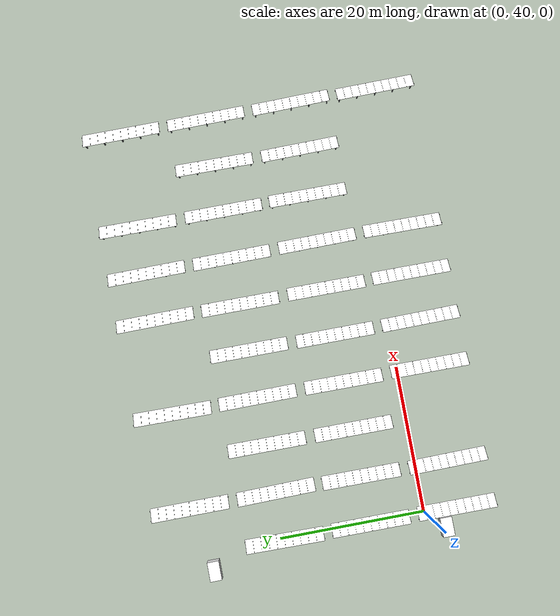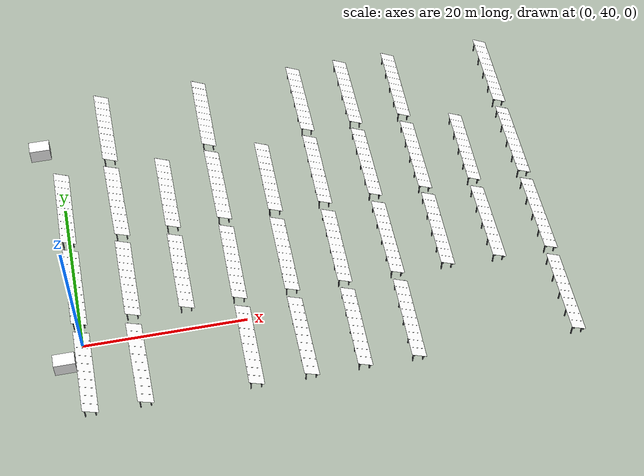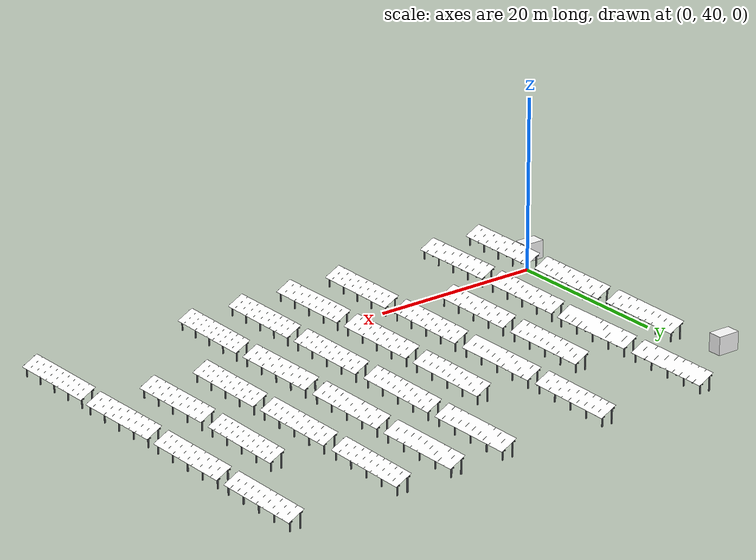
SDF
<sdf version="1.10">
 <world name="solar_farm">
  <model name="table_0003">
   <static>true</static>
   <pose>0.030 35.671 0 0 0 -0.00415</pose>
   <link name="table">
    <collision name="glass_col">
     <pose>0 0 1.6 0 0.488692 0</pose>
     <geometry><box><size>2.100 10.680 0.040</size></box></geometry>
    </collision>
    <visual name="glass">
     <pose>0 0 1.6 0 0.488692 0</pose>
     <geometry><mesh><uri>model://solar_farm_assets/meshes/pv_glass.obj</uri></mesh></geometry>
     <material>
      <ambient>0.25 0.25 0.25 1</ambient>
      <diffuse>1 1 1 1</diffuse>
      <specular>0.4 0.4 0.4 1</specular>
      <pbr>
       <metal>
        <albedo_map>model://solar_farm_assets/materials/textures/pv_atlas_17_albedo.png</albedo_map>
        <roughness_map>model://solar_farm_assets/materials/textures/pv_atlas_17_roughness.png</roughness_map>
        <normal_map>model://solar_farm_assets/materials/textures/pv_normal.png</normal_map>
        <metalness>0.1</metalness>
       </metal>
      </pbr>
     </material>
    </visual>
    <visual name="rack">
     <cast_shadows>false</cast_shadows>
     <geometry><mesh><uri>model://solar_farm_assets/meshes/pv_rack.obj</uri></mesh></geometry>
     <material>
      <ambient>0.18 0.18 0.20 1</ambient>
      <diffuse>0.40 0.41 0.43 1</diffuse>
      <specular>0.5 0.5 0.5 1</specular>
      <pbr><metal><roughness>0.45</roughness><metalness>0.85</metalness></metal></pbr>
     </material>
    </visual>
   </link>
  </model>
  <model name="table_0004">
   <static>true</static>
   <pose>-0.028 47.537 0 0 0 -0.00335</pose>
   <link name="table">
    <collision name="glass_col">
     <pose>0 0 1.6 0 0.488692 0</pose>
     <geometry><box><size>2.100 10.680 0.040</size></box></geometry>
    </collision>
    <visual name="glass">
     <pose>0 0 1.6 0 0.488692 0</pose>
     <geometry><mesh><uri>model://solar_farm_assets/meshes/pv_glass.obj</uri></mesh></geometry>
     <material>
      <ambient>0.25 0.25 0.25 1</ambient>
      <diffuse>1 1 1 1</diffuse>
      <specular>0.4 0.4 0.4 1</specular>
      <pbr>
       <metal>
        <albedo_map>model://solar_farm_assets/materials/textures/pv_atlas_18_albedo.png</albedo_map>
        <roughness_map>model://solar_farm_assets/materials/textures/pv_atlas_18_roughness.png</roughness_map>
        <normal_map>model://solar_farm_assets/materials/textures/pv_normal.png</normal_map>
        <metalness>0.1</metalness>
       </metal>
      </pbr>
     </material>
    </visual>
    <visual name="rack">
     <cast_shadows>false</cast_shadows>
     <geometry><mesh><uri>model://solar_farm_assets/meshes/pv_rack.obj</uri></mesh></geometry>
     <material>
      <ambient>0.18 0.18 0.20 1</ambient>
      <diffuse>0.40 0.41 0.43 1</diffuse>
      <specular>0.5 0.5 0.5 1</specular>
      <pbr><metal><roughness>0.45</roughness><metalness>0.85</metalness></metal></pbr>
     </material>
    </visual>
   </link>
  </model>
  <model name="table_0005">
   <static>true</static>
   <pose>-0.051 59.386 0 0 0 -0.01309</pose>
   <link name="table">
    <collision name="glass_col">
     <pose>0 0 1.6 0 0.488692 0</pose>
     <geometry><box><size>2.100 10.680 0.040</size></box></geometry>
    </collision>
    <visual name="glass">
     <pose>0 0 1.6 0 0.488692 0</pose>
     <geometry><mesh><uri>model://solar_farm_assets/meshes/pv_glass.obj</uri></mesh></geometry>
     <material>
      <ambient>0.25 0.25 0.25 1</ambient>
      <diffuse>1 1 1 1</diffuse>
      <specular>0.4 0.4 0.4 1</specular>
      <pbr>
       <metal>
        <albedo_map>model://solar_farm_assets/materials/textures/pv_atlas_03_albedo.png</albedo_map>
        <roughness_map>model://solar_farm_assets/materials/textures/pv_atlas_03_roughness.png</roughness_map>
        <normal_map>model://solar_farm_assets/materials/textures/pv_normal.png</normal_map>
        <metalness>0.1</metalness>
       </metal>
      </pbr>
     </material>
    </visual>
    <visual name="rack">
     <cast_shadows>false</cast_shadows>
     <geometry><mesh><uri>model://solar_farm_assets/meshes/pv_rack.obj</uri></mesh></geometry>
     <material>
      <ambient>0.18 0.18 0.20 1</ambient>
      <diffuse>0.40 0.41 0.43 1</diffuse>
      <specular>0.5 0.5 0.5 1</specular>
      <pbr><metal><roughness>0.45</roughness><metalness>0.85</metalness></metal></pbr>
     </material>
    </visual>
   </link>
  </model>
  <model name="table_0013">
   <static>true</static>
   <pose>6.402 35.710 0 0 0 0.01118</pose>
   <link name="table">
    <collision name="glass_col">
     <pose>0 0 1.6 0 0.488692 0</pose>
     <geometry><box><size>2.100 10.680 0.040</size></box></geometry>
    </collision>
    <visual name="glass">
     <pose>0 0 1.6 0 0.488692 0</pose>
     <geometry><mesh><uri>model://solar_farm_assets/meshes/pv_glass.obj</uri></mesh></geometry>
     <material>
      <ambient>0.25 0.25 0.25 1</ambient>
      <diffuse>1 1 1 1</diffuse>
      <specular>0.4 0.4 0.4 1</specular>
      <pbr>
       <metal>
        <albedo_map>model://solar_farm_assets/materials/textures/pv_atlas_16_albedo.png</albedo_map>
        <roughness_map>model://solar_farm_assets/materials/textures/pv_atlas_16_roughness.png</roughness_map>
        <normal_map>model://solar_farm_assets/materials/textures/pv_normal.png</normal_map>
        <metalness>0.1</metalness>
       </metal>
      </pbr>
     </material>
    </visual>
    <visual name="rack">
     <cast_shadows>false</cast_shadows>
     <geometry><mesh><uri>model://solar_farm_assets/meshes/pv_rack.obj</uri></mesh></geometry>
     <material>
      <ambient>0.18 0.18 0.20 1</ambient>
      <diffuse>0.40 0.41 0.43 1</diffuse>
      <specular>0.5 0.5 0.5 1</specular>
      <pbr><metal><roughness>0.45</roughness><metalness>0.85</metalness></metal></pbr>
     </material>
    </visual>
   </link>
  </model>
  <model name="table_0014">
   <static>true</static>
   <pose>6.471 47.633 0 0 0 -0.00559</pose>
   <link name="table">
    <collision name="glass_col">
     <pose>0 0 1.6 0 0.488692 0</pose>
     <geometry><box><size>2.100 10.680 0.040</size></box></geometry>
    </collision>
    <visual name="glass">
     <pose>0 0 1.6 0 0.488692 0</pose>
     <geometry><mesh><uri>model://solar_farm_assets/meshes/pv_glass.obj</uri></mesh></geometry>
     <material>
      <ambient>0.25 0.25 0.25 1</ambient>
      <diffuse>1 1 1 1</diffuse>
      <specular>0.4 0.4 0.4 1</specular>
      <pbr>
       <metal>
        <albedo_map>model://solar_farm_assets/materials/textures/pv_atlas_08_albedo.png</albedo_map>
        <roughness_map>model://solar_farm_assets/materials/textures/pv_atlas_08_roughness.png</roughness_map>
        <normal_map>model://solar_farm_assets/materials/textures/pv_normal.png</normal_map>
        <metalness>0.1</metalness>
       </metal>
      </pbr>
     </material>
    </visual>
    <visual name="rack">
     <cast_shadows>false</cast_shadows>
     <geometry><mesh><uri>model://solar_farm_assets/meshes/pv_rack.obj</uri></mesh></geometry>
     <material>
      <ambient>0.18 0.18 0.20 1</ambient>
      <diffuse>0.40 0.41 0.43 1</diffuse>
      <specular>0.5 0.5 0.5 1</specular>
      <pbr><metal><roughness>0.45</roughness><metalness>0.85</metalness></metal></pbr>
     </material>
    </visual>
   </link>
  </model>
  <model name="table_0015">
   <static>true</static>
   <pose>6.536 59.358 0 0 0 0.01509</pose>
   <link name="table">
    <collision name="glass_col">
     <pose>0 0 1.6 0 0.488692 0</pose>
     <geometry><box><size>2.100 10.680 0.040</size></box></geometry>
    </collision>
    <visual name="glass">
     <pose>0 0 1.6 0 0.488692 0</pose>
     <geometry><mesh><uri>model://solar_farm_assets/meshes/pv_glass.obj</uri></mesh></geometry>
     <material>
      <ambient>0.25 0.25 0.25 1</ambient>
      <diffuse>1 1 1 1</diffuse>
      <specular>0.4 0.4 0.4 1</specular>
      <pbr>
       <metal>
        <albedo_map>model://solar_farm_assets/materials/textures/pv_atlas_01_albedo.png</albedo_map>
        <roughness_map>model://solar_farm_assets/materials/textures/pv_atlas_01_roughness.png</roughness_map>
        <normal_map>model://solar_farm_assets/materials/textures/pv_normal.png</normal_map>
        <metalness>0.1</metalness>
       </metal>
      </pbr>
     </material>
    </visual>
    <visual name="rack">
     <cast_shadows>false</cast_shadows>
     <geometry><mesh><uri>model://solar_farm_assets/meshes/pv_rack.obj</uri></mesh></geometry>
     <material>
      <ambient>0.18 0.18 0.20 1</ambient>
      <diffuse>0.40 0.41 0.43 1</diffuse>
      <specular>0.5 0.5 0.5 1</specular>
      <pbr><metal><roughness>0.45</roughness><metalness>0.85</metalness></metal></pbr>
     </material>
    </visual>
   </link>
  </model>
  <model name="table_0016">
   <static>true</static>
   <pose>6.483 71.230 0 0 0 0.00044</pose>
   <link name="table">
    <collision name="glass_col">
     <pose>0 0 1.6 0 0.488692 0</pose>
     <geometry><box><size>2.100 10.680 0.040</size></box></geometry>
    </collision>
    <visual name="glass">
     <pose>0 0 1.6 0 0.488692 0</pose>
     <geometry><mesh><uri>model://solar_farm_assets/meshes/pv_glass.obj</uri></mesh></geometry>
     <material>
      <ambient>0.25 0.25 0.25 1</ambient>
      <diffuse>1 1 1 1</diffuse>
      <specular>0.4 0.4 0.4 1</specular>
      <pbr>
       <metal>
        <albedo_map>model://solar_farm_assets/materials/textures/pv_atlas_13_albedo.png</albedo_map>
        <roughness_map>model://solar_farm_assets/materials/textures/pv_atlas_13_roughness.png</roughness_map>
        <normal_map>model://solar_farm_assets/materials/textures/pv_normal.png</normal_map>
        <metalness>0.1</metalness>
       </metal>
      </pbr>
     </material>
    </visual>
    <visual name="rack">
     <cast_shadows>false</cast_shadows>
     <geometry><mesh><uri>model://solar_farm_assets/meshes/pv_rack.obj</uri></mesh></geometry>
     <material>
      <ambient>0.18 0.18 0.20 1</ambient>
      <diffuse>0.40 0.41 0.43 1</diffuse>
      <specular>0.5 0.5 0.5 1</specular>
      <pbr><metal><roughness>0.45</roughness><metalness>0.85</metalness></metal></pbr>
     </material>
    </visual>
   </link>
  </model>
  <model name="table_0024">
   <static>true</static>
   <pose>12.987 47.448 0 0 0 -0.00189</pose>
   <link name="table">
    <collision name="glass_col">
     <pose>0 0 1.6 0 0.488692 0</pose>
     <geometry><box><size>2.100 10.680 0.040</size></box></geometry>
    </collision>
    <visual name="glass">
     <pose>0 0 1.6 0 0.488692 0</pose>
     <geometry><mesh><uri>model://solar_farm_assets/meshes/pv_glass.obj</uri></mesh></geometry>
     <material>
      <ambient>0.25 0.25 0.25 1</ambient>
      <diffuse>1 1 1 1</diffuse>
      <specular>0.4 0.4 0.4 1</specular>
      <pbr>
       <metal>
        <albedo_map>model://solar_farm_assets/materials/textures/pv_atlas_01_albedo.png</albedo_map>
        <roughness_map>model://solar_farm_assets/materials/textures/pv_atlas_01_roughness.png</roughness_map>
        <normal_map>model://solar_farm_assets/materials/textures/pv_normal.png</normal_map>
        <metalness>0.1</metalness>
       </metal>
      </pbr>
     </material>
    </visual>
    <visual name="rack">
     <cast_shadows>false</cast_shadows>
     <geometry><mesh><uri>model://solar_farm_assets/meshes/pv_rack.obj</uri></mesh></geometry>
     <material>
      <ambient>0.18 0.18 0.20 1</ambient>
      <diffuse>0.40 0.41 0.43 1</diffuse>
      <specular>0.5 0.5 0.5 1</specular>
      <pbr><metal><roughness>0.45</roughness><metalness>0.85</metalness></metal></pbr>
     </material>
    </visual>
   </link>
  </model>
  <model name="table_0025">
   <static>true</static>
   <pose>13.041 59.398 0 0 0 -0.00343</pose>
   <link name="table">
    <collision name="glass_col">
     <pose>0 0 1.6 0 0.488692 0</pose>
     <geometry><box><size>2.100 10.680 0.040</size></box></geometry>
    </collision>
    <visual name="glass">
     <pose>0 0 1.6 0 0.488692 0</pose>
     <geometry><mesh><uri>model://solar_farm_assets/meshes/pv_glass.obj</uri></mesh></geometry>
     <material>
      <ambient>0.25 0.25 0.25 1</ambient>
      <diffuse>1 1 1 1</diffuse>
      <specular>0.4 0.4 0.4 1</specular>
      <pbr>
       <metal>
        <albedo_map>model://solar_farm_assets/materials/textures/pv_atlas_06_albedo.png</albedo_map>
        <roughness_map>model://solar_farm_assets/materials/textures/pv_atlas_06_roughness.png</roughness_map>
        <normal_map>model://solar_farm_assets/materials/textures/pv_normal.png</normal_map>
        <metalness>0.1</metalness>
       </metal>
      </pbr>
     </material>
    </visual>
    <visual name="rack">
     <cast_shadows>false</cast_shadows>
     <geometry><mesh><uri>model://solar_farm_assets/meshes/pv_rack.obj</uri></mesh></geometry>
     <material>
      <ambient>0.18 0.18 0.20 1</ambient>
      <diffuse>0.40 0.41 0.43 1</diffuse>
      <specular>0.5 0.5 0.5 1</specular>
      <pbr><metal><roughness>0.45</roughness><metalness>0.85</metalness></metal></pbr>
     </material>
    </visual>
   </link>
  </model>
  <model name="table_0033">
   <static>true</static>
   <pose>19.518 35.666 0 0 0 -0.00690</pose>
   <link name="table">
    <collision name="glass_col">
     <pose>0 0 1.6 0 0.488692 0</pose>
     <geometry><box><size>2.100 10.680 0.040</size></box></geometry>
    </collision>
    <visual name="glass">
     <pose>0 0 1.6 0 0.488692 0</pose>
     <geometry><mesh><uri>model://solar_farm_assets/meshes/pv_glass.obj</uri></mesh></geometry>
     <material>
      <ambient>0.25 0.25 0.25 1</ambient>
      <diffuse>1 1 1 1</diffuse>
      <specular>0.4 0.4 0.4 1</specular>
      <pbr>
       <metal>
        <albedo_map>model://solar_farm_assets/materials/textures/pv_atlas_11_albedo.png</albedo_map>
        <roughness_map>model://solar_farm_assets/materials/textures/pv_atlas_11_roughness.png</roughness_map>
        <normal_map>model://solar_farm_assets/materials/textures/pv_normal.png</normal_map>
        <metalness>0.1</metalness>
       </metal>
      </pbr>
     </material>
    </visual>
    <visual name="rack">
     <cast_shadows>false</cast_shadows>
     <geometry><mesh><uri>model://solar_farm_assets/meshes/pv_rack.obj</uri></mesh></geometry>
     <material>
      <ambient>0.18 0.18 0.20 1</ambient>
      <diffuse>0.40 0.41 0.43 1</diffuse>
      <specular>0.5 0.5 0.5 1</specular>
      <pbr><metal><roughness>0.45</roughness><metalness>0.85</metalness></metal></pbr>
     </material>
    </visual>
   </link>
  </model>
  <model name="table_0034">
   <static>true</static>
   <pose>19.499 47.564 0 0 0 -0.00833</pose>
   <link name="table">
    <collision name="glass_col">
     <pose>0 0 1.6 0 0.488692 0</pose>
     <geometry><box><size>2.100 10.680 0.040</size></box></geometry>
    </collision>
    <visual name="glass">
     <pose>0 0 1.6 0 0.488692 0</pose>
     <geometry><mesh><uri>model://solar_farm_assets/meshes/pv_glass.obj</uri></mesh></geometry>
     <material>
      <ambient>0.25 0.25 0.25 1</ambient>
      <diffuse>1 1 1 1</diffuse>
      <specular>0.4 0.4 0.4 1</specular>
      <pbr>
       <metal>
        <albedo_map>model://solar_farm_assets/materials/textures/pv_atlas_17_albedo.png</albedo_map>
        <roughness_map>model://solar_farm_assets/materials/textures/pv_atlas_17_roughness.png</roughness_map>
        <normal_map>model://solar_farm_assets/materials/textures/pv_normal.png</normal_map>
        <metalness>0.1</metalness>
       </metal>
      </pbr>
     </material>
    </visual>
    <visual name="rack">
     <cast_shadows>false</cast_shadows>
     <geometry><mesh><uri>model://solar_farm_assets/meshes/pv_rack.obj</uri></mesh></geometry>
     <material>
      <ambient>0.18 0.18 0.20 1</ambient>
      <diffuse>0.40 0.41 0.43 1</diffuse>
      <specular>0.5 0.5 0.5 1</specular>
      <pbr><metal><roughness>0.45</roughness><metalness>0.85</metalness></metal></pbr>
     </material>
    </visual>
   </link>
  </model>
  <model name="table_0035">
   <static>true</static>
   <pose>19.528 59.456 0 0 0 0.00316</pose>
   <link name="table">
    <collision name="glass_col">
     <pose>0 0 1.6 0 0.488692 0</pose>
     <geometry><box><size>2.100 10.680 0.040</size></box></geometry>
    </collision>
    <visual name="glass">
     <pose>0 0 1.6 0 0.488692 0</pose>
     <geometry><mesh><uri>model://solar_farm_assets/meshes/pv_glass.obj</uri></mesh></geometry>
     <material>
      <ambient>0.25 0.25 0.25 1</ambient>
      <diffuse>1 1 1 1</diffuse>
      <specular>0.4 0.4 0.4 1</specular>
      <pbr>
       <metal>
        <albedo_map>model://solar_farm_assets/materials/textures/pv_atlas_14_albedo.png</albedo_map>
        <roughness_map>model://solar_farm_assets/materials/textures/pv_atlas_14_roughness.png</roughness_map>
        <normal_map>model://solar_farm_assets/materials/textures/pv_normal.png</normal_map>
        <metalness>0.1</metalness>
       </metal>
      </pbr>
     </material>
    </visual>
    <visual name="rack">
     <cast_shadows>false</cast_shadows>
     <geometry><mesh><uri>model://solar_farm_assets/meshes/pv_rack.obj</uri></mesh></geometry>
     <material>
      <ambient>0.18 0.18 0.20 1</ambient>
      <diffuse>0.40 0.41 0.43 1</diffuse>
      <specular>0.5 0.5 0.5 1</specular>
      <pbr><metal><roughness>0.45</roughness><metalness>0.85</metalness></metal></pbr>
     </material>
    </visual>
   </link>
  </model>
  <model name="table_0036">
   <static>true</static>
   <pose>19.501 71.237 0 0 0 -0.01435</pose>
   <link name="table">
    <collision name="glass_col">
     <pose>0 0 1.6 0 0.488692 0</pose>
     <geometry><box><size>2.100 10.680 0.040</size></box></geometry>
    </collision>
    <visual name="glass">
     <pose>0 0 1.6 0 0.488692 0</pose>
     <geometry><mesh><uri>model://solar_farm_assets/meshes/pv_glass.obj</uri></mesh></geometry>
     <material>
      <ambient>0.25 0.25 0.25 1</ambient>
      <diffuse>1 1 1 1</diffuse>
      <specular>0.4 0.4 0.4 1</specular>
      <pbr>
       <metal>
        <albedo_map>model://solar_farm_assets/materials/textures/pv_atlas_12_albedo.png</albedo_map>
        <roughness_map>model://solar_farm_assets/materials/textures/pv_atlas_12_roughness.png</roughness_map>
        <normal_map>model://solar_farm_assets/materials/textures/pv_normal.png</normal_map>
        <metalness>0.1</metalness>
       </metal>
      </pbr>
     </material>
    </visual>
    <visual name="rack">
     <cast_shadows>false</cast_shadows>
     <geometry><mesh><uri>model://solar_farm_assets/meshes/pv_rack.obj</uri></mesh></geometry>
     <material>
      <ambient>0.18 0.18 0.20 1</ambient>
      <diffuse>0.40 0.41 0.43 1</diffuse>
      <specular>0.5 0.5 0.5 1</specular>
      <pbr><metal><roughness>0.45</roughness><metalness>0.85</metalness></metal></pbr>
     </material>
    </visual>
   </link>
  </model>
  <model name="table_0043">
   <static>true</static>
   <pose>26.001 35.669 0 0 0 0.00779</pose>
   <link name="table">
    <collision name="glass_col">
     <pose>0 0 1.6 0 0.488692 0</pose>
     <geometry><box><size>2.100 10.680 0.040</size></box></geometry>
    </collision>
    <visual name="glass">
     <pose>0 0 1.6 0 0.488692 0</pose>
     <geometry><mesh><uri>model://solar_farm_assets/meshes/pv_glass.obj</uri></mesh></geometry>
     <material>
      <ambient>0.25 0.25 0.25 1</ambient>
      <diffuse>1 1 1 1</diffuse>
      <specular>0.4 0.4 0.4 1</specular>
      <pbr>
       <metal>
        <albedo_map>model://solar_farm_assets/materials/textures/pv_atlas_10_albedo.png</albedo_map>
        <roughness_map>model://solar_farm_assets/materials/textures/pv_atlas_10_roughness.png</roughness_map>
        <normal_map>model://solar_farm_assets/materials/textures/pv_normal.png</normal_map>
        <metalness>0.1</metalness>
       </metal>
      </pbr>
     </material>
    </visual>
    <visual name="rack">
     <cast_shadows>false</cast_shadows>
     <geometry><mesh><uri>model://solar_farm_assets/meshes/pv_rack.obj</uri></mesh></geometry>
     <material>
      <ambient>0.18 0.18 0.20 1</ambient>
      <diffuse>0.40 0.41 0.43 1</diffuse>
      <specular>0.5 0.5 0.5 1</specular>
      <pbr><metal><roughness>0.45</roughness><metalness>0.85</metalness></metal></pbr>
     </material>
    </visual>
   </link>
  </model>
  <model name="table_0044">
   <static>true</static>
   <pose>25.968 47.508 0 0 0 -0.00264</pose>
   <link name="table">
    <collision name="glass_col">
     <pose>0 0 1.6 0 0.488692 0</pose>
     <geometry><box><size>2.100 10.680 0.040</size></box></geometry>
    </collision>
    <visual name="glass">
     <pose>0 0 1.6 0 0.488692 0</pose>
     <geometry><mesh><uri>model://solar_farm_assets/meshes/pv_glass.obj</uri></mesh></geometry>
     <material>
      <ambient>0.25 0.25 0.25 1</ambient>
      <diffuse>1 1 1 1</diffuse>
      <specular>0.4 0.4 0.4 1</specular>
      <pbr>
       <metal>
        <albedo_map>model://solar_farm_assets/materials/textures/pv_atlas_12_albedo.png</albedo_map>
        <roughness_map>model://solar_farm_assets/materials/textures/pv_atlas_12_roughness.png</roughness_map>
        <normal_map>model://solar_farm_assets/materials/textures/pv_normal.png</normal_map>
        <metalness>0.1</metalness>
       </metal>
      </pbr>
     </material>
    </visual>
    <visual name="rack">
     <cast_shadows>false</cast_shadows>
     <geometry><mesh><uri>model://solar_farm_assets/meshes/pv_rack.obj</uri></mesh></geometry>
     <material>
      <ambient>0.18 0.18 0.20 1</ambient>
      <diffuse>0.40 0.41 0.43 1</diffuse>
      <specular>0.5 0.5 0.5 1</specular>
      <pbr><metal><roughness>0.45</roughness><metalness>0.85</metalness></metal></pbr>
     </material>
    </visual>
   </link>
  </model>
  <model name="table_0045">
   <static>true</static>
   <pose>26.076 59.431 0 0 0 -0.00497</pose>
   <link name="table">
    <collision name="glass_col">
     <pose>0 0 1.6 0 0.488692 0</pose>
     <geometry><box><size>2.100 10.680 0.040</size></box></geometry>
    </collision>
    <visual name="glass">
     <pose>0 0 1.6 0 0.488692 0</pose>
     <geometry><mesh><uri>model://solar_farm_assets/meshes/pv_glass.obj</uri></mesh></geometry>
     <material>
      <ambient>0.25 0.25 0.25 1</ambient>
      <diffuse>1 1 1 1</diffuse>
      <specular>0.4 0.4 0.4 1</specular>
      <pbr>
       <metal>
        <albedo_map>model://solar_farm_assets/materials/textures/pv_atlas_00_albedo.png</albedo_map>
        <roughness_map>model://solar_farm_assets/materials/textures/pv_atlas_00_roughness.png</roughness_map>
        <normal_map>model://solar_farm_assets/materials/textures/pv_normal.png</normal_map>
        <metalness>0.1</metalness>
       </metal>
      </pbr>
     </material>
    </visual>
    <visual name="rack">
     <cast_shadows>false</cast_shadows>
     <geometry><mesh><uri>model://solar_farm_assets/meshes/pv_rack.obj</uri></mesh></geometry>
     <material>
      <ambient>0.18 0.18 0.20 1</ambient>
      <diffuse>0.40 0.41 0.43 1</diffuse>
      <specular>0.5 0.5 0.5 1</specular>
      <pbr><metal><roughness>0.45</roughness><metalness>0.85</metalness></metal></pbr>
     </material>
    </visual>
   </link>
  </model>
  <model name="table_0053">
   <static>true</static>
   <pose>32.491 35.713 0 0 0 -0.00608</pose>
   <link name="table">
    <collision name="glass_col">
     <pose>0 0 1.6 0 0.488692 0</pose>
     <geometry><box><size>2.100 10.680 0.040</size></box></geometry>
    </collision>
    <visual name="glass">
     <pose>0 0 1.6 0 0.488692 0</pose>
     <geometry><mesh><uri>model://solar_farm_assets/meshes/pv_glass.obj</uri></mesh></geometry>
     <material>
      <ambient>0.25 0.25 0.25 1</ambient>
      <diffuse>1 1 1 1</diffuse>
      <specular>0.4 0.4 0.4 1</specular>
      <pbr>
       <metal>
        <albedo_map>model://solar_farm_assets/materials/textures/pv_atlas_13_albedo.png</albedo_map>
        <roughness_map>model://solar_farm_assets/materials/textures/pv_atlas_13_roughness.png</roughness_map>
        <normal_map>model://solar_farm_assets/materials/textures/pv_normal.png</normal_map>
        <metalness>0.1</metalness>
       </metal>
      </pbr>
     </material>
    </visual>
    <visual name="rack">
     <cast_shadows>false</cast_shadows>
     <geometry><mesh><uri>model://solar_farm_assets/meshes/pv_rack.obj</uri></mesh></geometry>
     <material>
      <ambient>0.18 0.18 0.20 1</ambient>
      <diffuse>0.40 0.41 0.43 1</diffuse>
      <specular>0.5 0.5 0.5 1</specular>
      <pbr><metal><roughness>0.45</roughness><metalness>0.85</metalness></metal></pbr>
     </material>
    </visual>
   </link>
  </model>
  <model name="table_0054">
   <static>true</static>
   <pose>32.503 47.481 0 0 0 -0.00562</pose>
   <link name="table">
    <collision name="glass_col">
     <pose>0 0 1.6 0 0.488692 0</pose>
     <geometry><box><size>2.100 10.680 0.040</size></box></geometry>
    </collision>
    <visual name="glass">
     <pose>0 0 1.6 0 0.488692 0</pose>
     <geometry><mesh><uri>model://solar_farm_assets/meshes/pv_glass.obj</uri></mesh></geometry>
     <material>
      <ambient>0.25 0.25 0.25 1</ambient>
      <diffuse>1 1 1 1</diffuse>
      <specular>0.4 0.4 0.4 1</specular>
      <pbr>
       <metal>
        <albedo_map>model://solar_farm_assets/materials/textures/pv_atlas_18_albedo.png</albedo_map>
        <roughness_map>model://solar_farm_assets/materials/textures/pv_atlas_18_roughness.png</roughness_map>
        <normal_map>model://solar_farm_assets/materials/textures/pv_normal.png</normal_map>
        <metalness>0.1</metalness>
       </metal>
      </pbr>
     </material>
    </visual>
    <visual name="rack">
     <cast_shadows>false</cast_shadows>
     <geometry><mesh><uri>model://solar_farm_assets/meshes/pv_rack.obj</uri></mesh></geometry>
     <material>
      <ambient>0.18 0.18 0.20 1</ambient>
      <diffuse>0.40 0.41 0.43 1</diffuse>
      <specular>0.5 0.5 0.5 1</specular>
      <pbr><metal><roughness>0.45</roughness><metalness>0.85</metalness></metal></pbr>
     </material>
    </visual>
   </link>
  </model>
  <model name="table_0055">
   <static>true</static>
   <pose>32.470 59.441 0 0 0 -0.00553</pose>
   <link name="table">
    <collision name="glass_col">
     <pose>0 0 1.6 0 0.488692 0</pose>
     <geometry><box><size>2.100 10.680 0.040</size></box></geometry>
    </collision>
    <visual name="glass">
     <pose>0 0 1.6 0 0.488692 0</pose>
     <geometry><mesh><uri>model://solar_farm_assets/meshes/pv_glass.obj</uri></mesh></geometry>
     <material>
      <ambient>0.25 0.25 0.25 1</ambient>
      <diffuse>1 1 1 1</diffuse>
      <specular>0.4 0.4 0.4 1</specular>
      <pbr>
       <metal>
        <albedo_map>model://solar_farm_assets/materials/textures/pv_atlas_03_albedo.png</albedo_map>
        <roughness_map>model://solar_farm_assets/materials/textures/pv_atlas_03_roughness.png</roughness_map>
        <normal_map>model://solar_farm_assets/materials/textures/pv_normal.png</normal_map>
        <metalness>0.1</metalness>
       </metal>
      </pbr>
     </material>
    </visual>
    <visual name="rack">
     <cast_shadows>false</cast_shadows>
     <geometry><mesh><uri>model://solar_farm_assets/meshes/pv_rack.obj</uri></mesh></geometry>
     <material>
      <ambient>0.18 0.18 0.20 1</ambient>
      <diffuse>0.40 0.41 0.43 1</diffuse>
      <specular>0.5 0.5 0.5 1</specular>
      <pbr><metal><roughness>0.45</roughness><metalness>0.85</metalness></metal></pbr>
     </material>
    </visual>
   </link>
  </model>
  <model name="table_0056">
   <static>true</static>
   <pose>32.491 71.270 0 0 0 0.00438</pose>
   <link name="table">
    <collision name="glass_col">
     <pose>0 0 1.6 0 0.488692 0</pose>
     <geometry><box><size>2.100 10.680 0.040</size></box></geometry>
    </collision>
    <visual name="glass">
     <pose>0 0 1.6 0 0.488692 0</pose>
     <geometry><mesh><uri>model://solar_farm_assets/meshes/pv_glass.obj</uri></mesh></geometry>
     <material>
      <ambient>0.25 0.25 0.25 1</ambient>
      <diffuse>1 1 1 1</diffuse>
      <specular>0.4 0.4 0.4 1</specular>
      <pbr>
       <metal>
        <albedo_map>model://solar_farm_assets/materials/textures/pv_atlas_17_albedo.png</albedo_map>
        <roughness_map>model://solar_farm_assets/materials/textures/pv_atlas_17_roughness.png</roughness_map>
        <normal_map>model://solar_farm_assets/materials/textures/pv_normal.png</normal_map>
        <metalness>0.1</metalness>
       </metal>
      </pbr>
     </material>
    </visual>
    <visual name="rack">
     <cast_shadows>false</cast_shadows>
     <geometry><mesh><uri>model://solar_farm_assets/meshes/pv_rack.obj</uri></mesh></geometry>
     <material>
      <ambient>0.18 0.18 0.20 1</ambient>
      <diffuse>0.40 0.41 0.43 1</diffuse>
      <specular>0.5 0.5 0.5 1</specular>
      <pbr><metal><roughness>0.45</roughness><metalness>0.85</metalness></metal></pbr>
     </material>
    </visual>
   </link>
  </model>
  <model name="table_0063">
   <static>true</static>
   <pose>39.023 35.666 0 0 0 -0.01412</pose>
   <link name="table">
    <collision name="glass_col">
     <pose>0 0 1.6 0 0.488692 0</pose>
     <geometry><box><size>2.100 10.680 0.040</size></box></geometry>
    </collision>
    <visual name="glass">
     <pose>0 0 1.6 0 0.488692 0</pose>
     <geometry><mesh><uri>model://solar_farm_assets/meshes/pv_glass.obj</uri></mesh></geometry>
     <material>
      <ambient>0.25 0.25 0.25 1</ambient>
      <diffuse>1 1 1 1</diffuse>
      <specular>0.4 0.4 0.4 1</specular>
      <pbr>
       <metal>
        <albedo_map>model://solar_farm_assets/materials/textures/pv_atlas_15_albedo.png</albedo_map>
        <roughness_map>model://solar_farm_assets/materials/textures/pv_atlas_15_roughness.png</roughness_map>
        <normal_map>model://solar_farm_assets/materials/textures/pv_normal.png</normal_map>
        <metalness>0.1</metalness>
       </metal>
      </pbr>
     </material>
    </visual>
    <visual name="rack">
     <cast_shadows>false</cast_shadows>
     <geometry><mesh><uri>model://solar_farm_assets/meshes/pv_rack.obj</uri></mesh></geometry>
     <material>
      <ambient>0.18 0.18 0.20 1</ambient>
      <diffuse>0.40 0.41 0.43 1</diffuse>
      <specular>0.5 0.5 0.5 1</specular>
      <pbr><metal><roughness>0.45</roughness><metalness>0.85</metalness></metal></pbr>
     </material>
    </visual>
   </link>
  </model>
  <model name="table_0064">
   <static>true</static>
   <pose>39.047 47.522 0 0 0 0.00572</pose>
   <link name="table">
    <collision name="glass_col">
     <pose>0 0 1.6 0 0.488692 0</pose>
     <geometry><box><size>2.100 10.680 0.040</size></box></geometry>
    </collision>
    <visual name="glass">
     <pose>0 0 1.6 0 0.488692 0</pose>
     <geometry><mesh><uri>model://solar_farm_assets/meshes/pv_glass.obj</uri></mesh></geometry>
     <material>
      <ambient>0.25 0.25 0.25 1</ambient>
      <diffuse>1 1 1 1</diffuse>
      <specular>0.4 0.4 0.4 1</specular>
      <pbr>
       <metal>
        <albedo_map>model://solar_farm_assets/materials/textures/pv_atlas_17_albedo.png</albedo_map>
        <roughness_map>model://solar_farm_assets/materials/textures/pv_atlas_17_roughness.png</roughness_map>
        <normal_map>model://solar_farm_assets/materials/textures/pv_normal.png</normal_map>
        <metalness>0.1</metalness>
       </metal>
      </pbr>
     </material>
    </visual>
    <visual name="rack">
     <cast_shadows>false</cast_shadows>
     <geometry><mesh><uri>model://solar_farm_assets/meshes/pv_rack.obj</uri></mesh></geometry>
     <material>
      <ambient>0.18 0.18 0.20 1</ambient>
      <diffuse>0.40 0.41 0.43 1</diffuse>
      <specular>0.5 0.5 0.5 1</specular>
      <pbr><metal><roughness>0.45</roughness><metalness>0.85</metalness></metal></pbr>
     </material>
    </visual>
   </link>
  </model>
  <model name="table_0065">
   <static>true</static>
   <pose>38.967 59.428 0 0 0 0.00181</pose>
   <link name="table">
    <collision name="glass_col">
     <pose>0 0 1.6 0 0.488692 0</pose>
     <geometry><box><size>2.100 10.680 0.040</size></box></geometry>
    </collision>
    <visual name="glass">
     <pose>0 0 1.6 0 0.488692 0</pose>
     <geometry><mesh><uri>model://solar_farm_assets/meshes/pv_glass.obj</uri></mesh></geometry>
     <material>
      <ambient>0.25 0.25 0.25 1</ambient>
      <diffuse>1 1 1 1</diffuse>
      <specular>0.4 0.4 0.4 1</specular>
      <pbr>
       <metal>
        <albedo_map>model://solar_farm_assets/materials/textures/pv_atlas_13_albedo.png</albedo_map>
        <roughness_map>model://solar_farm_assets/materials/textures/pv_atlas_13_roughness.png</roughness_map>
        <normal_map>model://solar_farm_assets/materials/textures/pv_normal.png</normal_map>
        <metalness>0.1</metalness>
       </metal>
      </pbr>
     </material>
    </visual>
    <visual name="rack">
     <cast_shadows>false</cast_shadows>
     <geometry><mesh><uri>model://solar_farm_assets/meshes/pv_rack.obj</uri></mesh></geometry>
     <material>
      <ambient>0.18 0.18 0.20 1</ambient>
      <diffuse>0.40 0.41 0.43 1</diffuse>
      <specular>0.5 0.5 0.5 1</specular>
      <pbr><metal><roughness>0.45</roughness><metalness>0.85</metalness></metal></pbr>
     </material>
    </visual>
   </link>
  </model>
  <model name="table_0066">
   <static>true</static>
   <pose>38.971 71.283 0 0 0 0.00405</pose>
   <link name="table">
    <collision name="glass_col">
     <pose>0 0 1.6 0 0.488692 0</pose>
     <geometry><box><size>2.100 10.680 0.040</size></box></geometry>
    </collision>
    <visual name="glass">
     <pose>0 0 1.6 0 0.488692 0</pose>
     <geometry><mesh><uri>model://solar_farm_assets/meshes/pv_glass.obj</uri></mesh></geometry>
     <material>
      <ambient>0.25 0.25 0.25 1</ambient>
      <diffuse>1 1 1 1</diffuse>
      <specular>0.4 0.4 0.4 1</specular>
      <pbr>
       <metal>
        <albedo_map>model://solar_farm_assets/materials/textures/pv_atlas_07_albedo.png</albedo_map>
        <roughness_map>model://solar_farm_assets/materials/textures/pv_atlas_07_roughness.png</roughness_map>
        <normal_map>model://solar_farm_assets/materials/textures/pv_normal.png</normal_map>
        <metalness>0.1</metalness>
       </metal>
      </pbr>
     </material>
    </visual>
    <visual name="rack">
     <cast_shadows>false</cast_shadows>
     <geometry><mesh><uri>model://solar_farm_assets/meshes/pv_rack.obj</uri></mesh></geometry>
     <material>
      <ambient>0.18 0.18 0.20 1</ambient>
      <diffuse>0.40 0.41 0.43 1</diffuse>
      <specular>0.5 0.5 0.5 1</specular>
      <pbr><metal><roughness>0.45</roughness><metalness>0.85</metalness></metal></pbr>
     </material>
    </visual>
   </link>
  </model>
  <model name="table_0074">
   <static>true</static>
   <pose>45.508 47.608 0 0 0 -0.00793</pose>
   <link name="table">
    <collision name="glass_col">
     <pose>0 0 1.6 0 0.488692 0</pose>
     <geometry><box><size>2.100 10.680 0.040</size></box></geometry>
    </collision>
    <visual name="glass">
     <pose>0 0 1.6 0 0.488692 0</pose>
     <geometry><mesh><uri>model://solar_farm_assets/meshes/pv_glass.obj</uri></mesh></geometry>
     <material>
      <ambient>0.25 0.25 0.25 1</ambient>
      <diffuse>1 1 1 1</diffuse>
      <specular>0.4 0.4 0.4 1</specular>
      <pbr>
       <metal>
        <albedo_map>model://solar_farm_assets/materials/textures/pv_atlas_16_albedo.png</albedo_map>
        <roughness_map>model://solar_farm_assets/materials/textures/pv_atlas_16_roughness.png</roughness_map>
        <normal_map>model://solar_farm_assets/materials/textures/pv_normal.png</normal_map>
        <metalness>0.1</metalness>
       </metal>
      </pbr>
     </material>
    </visual>
    <visual name="rack">
     <cast_shadows>false</cast_shadows>
     <geometry><mesh><uri>model://solar_farm_assets/meshes/pv_rack.obj</uri></mesh></geometry>
     <material>
      <ambient>0.18 0.18 0.20 1</ambient>
      <diffuse>0.40 0.41 0.43 1</diffuse>
      <specular>0.5 0.5 0.5 1</specular>
      <pbr><metal><roughness>0.45</roughness><metalness>0.85</metalness></metal></pbr>
     </material>
    </visual>
   </link>
  </model>
  <model name="table_0075">
   <static>true</static>
   <pose>45.494 59.361 0 0 0 -0.00341</pose>
   <link name="table">
    <collision name="glass_col">
     <pose>0 0 1.6 0 0.488692 0</pose>
     <geometry><box><size>2.100 10.680 0.040</size></box></geometry>
    </collision>
    <visual name="glass">
     <pose>0 0 1.6 0 0.488692 0</pose>
     <geometry><mesh><uri>model://solar_farm_assets/meshes/pv_glass.obj</uri></mesh></geometry>
     <material>
      <ambient>0.25 0.25 0.25 1</ambient>
      <diffuse>1 1 1 1</diffuse>
      <specular>0.4 0.4 0.4 1</specular>
      <pbr>
       <metal>
        <albedo_map>model://solar_farm_assets/materials/textures/pv_atlas_10_albedo.png</albedo_map>
        <roughness_map>model://solar_farm_assets/materials/textures/pv_atlas_10_roughness.png</roughness_map>
        <normal_map>model://solar_farm_assets/materials/textures/pv_normal.png</normal_map>
        <metalness>0.1</metalness>
       </metal>
      </pbr>
     </material>
    </visual>
    <visual name="rack">
     <cast_shadows>false</cast_shadows>
     <geometry><mesh><uri>model://solar_farm_assets/meshes/pv_rack.obj</uri></mesh></geometry>
     <material>
      <ambient>0.18 0.18 0.20 1</ambient>
      <diffuse>0.40 0.41 0.43 1</diffuse>
      <specular>0.5 0.5 0.5 1</specular>
      <pbr><metal><roughness>0.45</roughness><metalness>0.85</metalness></metal></pbr>
     </material>
    </visual>
   </link>
  </model>
  <model name="table_0076">
   <static>true</static>
   <pose>45.551 71.278 0 0 0 -0.01356</pose>
   <link name="table">
    <collision name="glass_col">
     <pose>0 0 1.6 0 0.488692 0</pose>
     <geometry><box><size>2.100 10.680 0.040</size></box></geometry>
    </collision>
    <visual name="glass">
     <pose>0 0 1.6 0 0.488692 0</pose>
     <geometry><mesh><uri>model://solar_farm_assets/meshes/pv_glass.obj</uri></mesh></geometry>
     <material>
      <ambient>0.25 0.25 0.25 1</ambient>
      <diffuse>1 1 1 1</diffuse>
      <specular>0.4 0.4 0.4 1</specular>
      <pbr>
       <metal>
        <albedo_map>model://solar_farm_assets/materials/textures/pv_atlas_02_albedo.png</albedo_map>
        <roughness_map>model://solar_farm_assets/materials/textures/pv_atlas_02_roughness.png</roughness_map>
        <normal_map>model://solar_farm_assets/materials/textures/pv_normal.png</normal_map>
        <metalness>0.1</metalness>
       </metal>
      </pbr>
     </material>
    </visual>
    <visual name="rack">
     <cast_shadows>false</cast_shadows>
     <geometry><mesh><uri>model://solar_farm_assets/meshes/pv_rack.obj</uri></mesh></geometry>
     <material>
      <ambient>0.18 0.18 0.20 1</ambient>
      <diffuse>0.40 0.41 0.43 1</diffuse>
      <specular>0.5 0.5 0.5 1</specular>
      <pbr><metal><roughness>0.45</roughness><metalness>0.85</metalness></metal></pbr>
     </material>
    </visual>
   </link>
  </model>
  <model name="table_0084">
   <static>true</static>
   <pose>51.957 47.496 0 0 0 0.00855</pose>
   <link name="table">
    <collision name="glass_col">
     <pose>0 0 1.6 0 0.488692 0</pose>
     <geometry><box><size>2.100 10.680 0.040</size></box></geometry>
    </collision>
    <visual name="glass">
     <pose>0 0 1.6 0 0.488692 0</pose>
     <geometry><mesh><uri>model://solar_farm_assets/meshes/pv_glass.obj</uri></mesh></geometry>
     <material>
      <ambient>0.25 0.25 0.25 1</ambient>
      <diffuse>1 1 1 1</diffuse>
      <specular>0.4 0.4 0.4 1</specular>
      <pbr>
       <metal>
        <albedo_map>model://solar_farm_assets/materials/textures/pv_atlas_13_albedo.png</albedo_map>
        <roughness_map>model://solar_farm_assets/materials/textures/pv_atlas_13_roughness.png</roughness_map>
        <normal_map>model://solar_farm_assets/materials/textures/pv_normal.png</normal_map>
        <metalness>0.1</metalness>
       </metal>
      </pbr>
     </material>
    </visual>
    <visual name="rack">
     <cast_shadows>false</cast_shadows>
     <geometry><mesh><uri>model://solar_farm_assets/meshes/pv_rack.obj</uri></mesh></geometry>
     <material>
      <ambient>0.18 0.18 0.20 1</ambient>
      <diffuse>0.40 0.41 0.43 1</diffuse>
      <specular>0.5 0.5 0.5 1</specular>
      <pbr><metal><roughness>0.45</roughness><metalness>0.85</metalness></metal></pbr>
     </material>
    </visual>
   </link>
  </model>
  <model name="table_0085">
   <static>true</static>
   <pose>52.021 59.430 0 0 0 -0.01293</pose>
   <link name="table">
    <collision name="glass_col">
     <pose>0 0 1.6 0 0.488692 0</pose>
     <geometry><box><size>2.100 10.680 0.040</size></box></geometry>
    </collision>
    <visual name="glass">
     <pose>0 0 1.6 0 0.488692 0</pose>
     <geometry><mesh><uri>model://solar_farm_assets/meshes/pv_glass.obj</uri></mesh></geometry>
     <material>
      <ambient>0.25 0.25 0.25 1</ambient>
      <diffuse>1 1 1 1</diffuse>
      <specular>0.4 0.4 0.4 1</specular>
      <pbr>
       <metal>
        <albedo_map>model://solar_farm_assets/materials/textures/pv_atlas_16_albedo.png</albedo_map>
        <roughness_map>model://solar_farm_assets/materials/textures/pv_atlas_16_roughness.png</roughness_map>
        <normal_map>model://solar_farm_assets/materials/textures/pv_normal.png</normal_map>
        <metalness>0.1</metalness>
       </metal>
      </pbr>
     </material>
    </visual>
    <visual name="rack">
     <cast_shadows>false</cast_shadows>
     <geometry><mesh><uri>model://solar_farm_assets/meshes/pv_rack.obj</uri></mesh></geometry>
     <material>
      <ambient>0.18 0.18 0.20 1</ambient>
      <diffuse>0.40 0.41 0.43 1</diffuse>
      <specular>0.5 0.5 0.5 1</specular>
      <pbr><metal><roughness>0.45</roughness><metalness>0.85</metalness></metal></pbr>
     </material>
    </visual>
   </link>
  </model>
  <model name="table_0093">
   <static>true</static>
   <pose>58.496 35.732 0 0 0 0.00713</pose>
   <link name="table">
    <collision name="glass_col">
     <pose>0 0 1.6 0 0.488692 0</pose>
     <geometry><box><size>2.100 10.680 0.040</size></box></geometry>
    </collision>
    <visual name="glass">
     <pose>0 0 1.6 0 0.488692 0</pose>
     <geometry><mesh><uri>model://solar_farm_assets/meshes/pv_glass.obj</uri></mesh></geometry>
     <material>
      <ambient>0.25 0.25 0.25 1</ambient>
      <diffuse>1 1 1 1</diffuse>
      <specular>0.4 0.4 0.4 1</specular>
      <pbr>
       <metal>
        <albedo_map>model://solar_farm_assets/materials/textures/pv_atlas_18_albedo.png</albedo_map>
        <roughness_map>model://solar_farm_assets/materials/textures/pv_atlas_18_roughness.png</roughness_map>
        <normal_map>model://solar_farm_assets/materials/textures/pv_normal.png</normal_map>
        <metalness>0.1</metalness>
       </metal>
      </pbr>
     </material>
    </visual>
    <visual name="rack">
     <cast_shadows>false</cast_shadows>
     <geometry><mesh><uri>model://solar_farm_assets/meshes/pv_rack.obj</uri></mesh></geometry>
     <material>
      <ambient>0.18 0.18 0.20 1</ambient>
      <diffuse>0.40 0.41 0.43 1</diffuse>
      <specular>0.5 0.5 0.5 1</specular>
      <pbr><metal><roughness>0.45</roughness><metalness>0.85</metalness></metal></pbr>
     </material>
    </visual>
   </link>
  </model>
  <model name="table_0094">
   <static>true</static>
   <pose>58.547 47.537 0 0 0 0.01388</pose>
   <link name="table">
    <collision name="glass_col">
     <pose>0 0 1.6 0 0.488692 0</pose>
     <geometry><box><size>2.100 10.680 0.040</size></box></geometry>
    </collision>
    <visual name="glass">
     <pose>0 0 1.6 0 0.488692 0</pose>
     <geometry><mesh><uri>model://solar_farm_assets/meshes/pv_glass.obj</uri></mesh></geometry>
     <material>
      <ambient>0.25 0.25 0.25 1</ambient>
      <diffuse>1 1 1 1</diffuse>
      <specular>0.4 0.4 0.4 1</specular>
      <pbr>
       <metal>
        <albedo_map>model://solar_farm_assets/materials/textures/pv_atlas_19_albedo.png</albedo_map>
        <roughness_map>model://solar_farm_assets/materials/textures/pv_atlas_19_roughness.png</roughness_map>
        <normal_map>model://solar_farm_assets/materials/textures/pv_normal.png</normal_map>
        <metalness>0.1</metalness>
       </metal>
      </pbr>
     </material>
    </visual>
    <visual name="rack">
     <cast_shadows>false</cast_shadows>
     <geometry><mesh><uri>model://solar_farm_assets/meshes/pv_rack.obj</uri></mesh></geometry>
     <material>
      <ambient>0.18 0.18 0.20 1</ambient>
      <diffuse>0.40 0.41 0.43 1</diffuse>
      <specular>0.5 0.5 0.5 1</specular>
      <pbr><metal><roughness>0.45</roughness><metalness>0.85</metalness></metal></pbr>
     </material>
    </visual>
   </link>
  </model>
  <model name="table_0095">
   <static>true</static>
   <pose>58.516 59.409 0 0 0 0.00414</pose>
   <link name="table">
    <collision name="glass_col">
     <pose>0 0 1.6 0 0.488692 0</pose>
     <geometry><box><size>2.100 10.680 0.040</size></box></geometry>
    </collision>
    <visual name="glass">
     <pose>0 0 1.6 0 0.488692 0</pose>
     <geometry><mesh><uri>model://solar_farm_assets/meshes/pv_glass.obj</uri></mesh></geometry>
     <material>
      <ambient>0.25 0.25 0.25 1</ambient>
      <diffuse>1 1 1 1</diffuse>
      <specular>0.4 0.4 0.4 1</specular>
      <pbr>
       <metal>
        <albedo_map>model://solar_farm_assets/materials/textures/pv_atlas_14_albedo.png</albedo_map>
        <roughness_map>model://solar_farm_assets/materials/textures/pv_atlas_14_roughness.png</roughness_map>
        <normal_map>model://solar_farm_assets/materials/textures/pv_normal.png</normal_map>
        <metalness>0.1</metalness>
       </metal>
      </pbr>
     </material>
    </visual>
    <visual name="rack">
     <cast_shadows>false</cast_shadows>
     <geometry><mesh><uri>model://solar_farm_assets/meshes/pv_rack.obj</uri></mesh></geometry>
     <material>
      <ambient>0.18 0.18 0.20 1</ambient>
      <diffuse>0.40 0.41 0.43 1</diffuse>
      <specular>0.5 0.5 0.5 1</specular>
      <pbr><metal><roughness>0.45</roughness><metalness>0.85</metalness></metal></pbr>
     </material>
    </visual>
   </link>
  </model>
  <model name="table_0096">
   <static>true</static>
   <pose>58.534 71.283 0 0 0 -0.00309</pose>
   <link name="table">
    <collision name="glass_col">
     <pose>0 0 1.6 0 0.488692 0</pose>
     <geometry><box><size>2.100 10.680 0.040</size></box></geometry>
    </collision>
    <visual name="glass">
     <pose>0 0 1.6 0 0.488692 0</pose>
     <geometry><mesh><uri>model://solar_farm_assets/meshes/pv_glass.obj</uri></mesh></geometry>
     <material>
      <ambient>0.25 0.25 0.25 1</ambient>
      <diffuse>1 1 1 1</diffuse>
      <specular>0.4 0.4 0.4 1</specular>
      <pbr>
       <metal>
        <albedo_map>model://solar_farm_assets/materials/textures/pv_atlas_04_albedo.png</albedo_map>
        <roughness_map>model://solar_farm_assets/materials/textures/pv_atlas_04_roughness.png</roughness_map>
        <normal_map>model://solar_farm_assets/materials/textures/pv_normal.png</normal_map>
        <metalness>0.1</metalness>
       </metal>
      </pbr>
     </material>
    </visual>
    <visual name="rack">
     <cast_shadows>false</cast_shadows>
     <geometry><mesh><uri>model://solar_farm_assets/meshes/pv_rack.obj</uri></mesh></geometry>
     <material>
      <ambient>0.18 0.18 0.20 1</ambient>
      <diffuse>0.40 0.41 0.43 1</diffuse>
      <specular>0.5 0.5 0.5 1</specular>
      <pbr><metal><roughness>0.45</roughness><metalness>0.85</metalness></metal></pbr>
     </material>
    </visual>
   </link>
  </model>
  <model name="inverter_01">
   <static>true</static>
   <pose>-2.308 37.494 1.050 0 0 0</pose>
   <link name="link">
    <collision name="c"><geometry><box><size>2.6 1.6 2.1</size></box></geometry></collision>
    <visual name="v">
     <geometry><box><size>2.6 1.6 2.1</size></box></geometry>
     <material>
      <ambient>0.28 0.28 0.28 1</ambient>
      <diffuse>1 1 1 1</diffuse>
      <specular>0.3 0.3 0.3 1</specular>
      <pbr>
       <metal>
        <albedo_map>model://solar_farm_assets/materials/textures/inverter_albedo.png</albedo_map>
        <roughness_map>model://solar_farm_assets/materials/textures/site_roughness.png</roughness_map>
        <metalness>0.6</metalness>
       </metal>
      </pbr>
     </material>
    </visual>
   </link>
  </model>
  <model name="inverter_02">
   <static>true</static>
   <pose>-2.308 69.416 1.050 0 0 0</pose>
   <link name="link">
    <collision name="c"><geometry><box><size>2.6 1.6 2.1</size></box></geometry></collision>
    <visual name="v">
     <geometry><box><size>2.6 1.6 2.1</size></box></geometry>
     <material>
      <ambient>0.28 0.28 0.28 1</ambient>
      <diffuse>1 1 1 1</diffuse>
      <specular>0.3 0.3 0.3 1</specular>
      <pbr>
       <metal>
        <albedo_map>model://solar_farm_assets/materials/textures/inverter_albedo.png</albedo_map>
        <roughness_map>model://solar_farm_assets/materials/textures/site_roughness.png</roughness_map>
        <metalness>0.6</metalness>
       </metal>
      </pbr>
     </material>
    </visual>
   </link>
  </model>
 </world>
</sdf>
